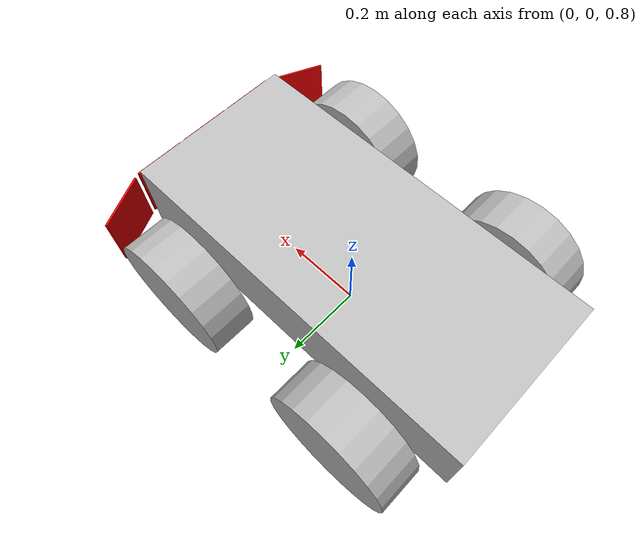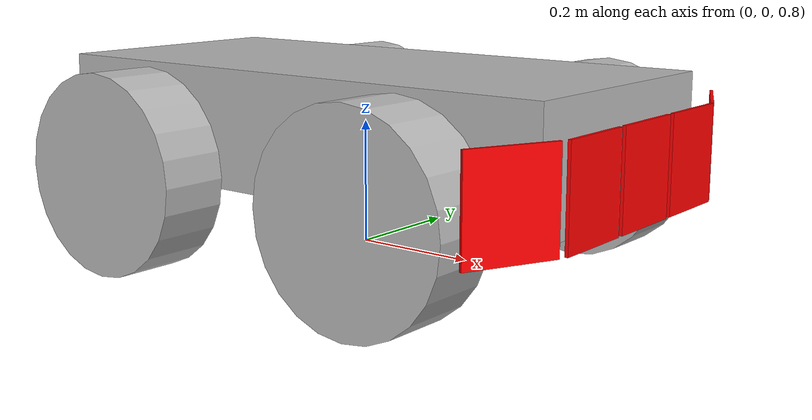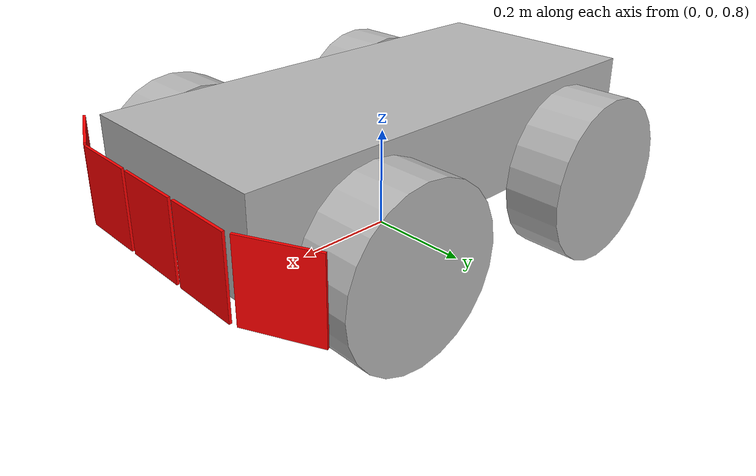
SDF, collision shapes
<?xml version="1.0" ?>
<sdf version="1.10">

<model name='scout' canonical_link='chassis'>

  <!-- base_link -->

  <link name='chassis'>
    <pose relative_to='__model__'>0 0 1 0 0 0</pose>
    <inertial auto="true">
      <mass>50</mass>
    </inertial>
    <visual name='visual'>
      <geometry>
        <mesh><uri>meshes/scout_base.dae</uri></mesh>
      </geometry>
    </visual>
    <collision name='collision'>
      <geometry>
        <box>
          <size>0.93 0.42 0.19</size>
        </box>
      </geometry>
    </collision>
    <sensor name="imu_sensor" type="imu">
      <always_on>true</always_on>
      <update_rate>1</update_rate>
      <visualize>true</visualize>
      <topic>scout/imu</topic>
    </sensor>
  </link>

  <!-- sensor bar -->

  <link name='force_bar_P0_link'>
    <pose relative_to="chassis">0.466 0.28 -0.025 1.57079 0 0.43633</pose>
    <inertial auto="true">
      <mass>1</mass>
    </inertial>
    <visual name='visual'>
      <geometry>
        <box>
          <size>0.005 0.15 0.14</size>
        </box>
      </geometry>
      <material>
        <ambient>1.0 0.0 0.0 1</ambient>
        <diffuse>1.0 0.0 0.0 1</diffuse>
        <specular>1.0 0.0 0.0 1</specular>
      </material>
    </visual>
    <collision name='collision'>
      <geometry>
        <box>
          <size>0.005 0.15 0.14</size>
        </box>
      </geometry>
    </collision>
  </link>
  <joint name='force_bar_P0_joint' type='fixed'>
    <pose relative_to='force_bar_P0_link'/>
    <parent>chassis</parent>
    <child>force_bar_P0_link</child>
    <sensor name='force_bar_P0_sensor' type='force_torque'>
      <always_on>true</always_on>
      <update_rate>1</update_rate>
      <visualize>true</visualize>
      <topic>scout/force_bar_P0</topic>
    </sensor>
  </joint>

  <link name='force_bar_P1_link'>
    <pose relative_to="chassis">0.5 0.14 -0.025 1.57079 0 0</pose>
    <inertial auto="true">
      <mass>1</mass>
    </inertial>
    <visual name='visual'>
      <geometry>
        <box>
          <size>0.005 0.15 0.13</size>
        </box>
      </geometry>
      <material>
        <ambient>1.0 0.0 0.0 1</ambient>
        <diffuse>1.0 0.0 0.0 1</diffuse>
        <specular>1.0 0.0 0.0 1</specular>
      </material>
    </visual>
    <collision name='collision'>
      <geometry>
        <box>
          <size>0.005 0.15 0.13</size>
        </box>
      </geometry>
    </collision>
  </link>
  <joint name='force_bar_P1_joint' type='fixed'>
    <pose relative_to='force_bar_P1_link'/>
    <parent>chassis</parent>
    <child>force_bar_P1_link</child>
    <sensor name='force_bar_P1_sensor' type='force_torque'>
      <always_on>true</always_on>
      <update_rate>1</update_rate>
      <visualize>true</visualize>
      <topic>scout/force_bar_P1</topic>
    </sensor>
  </joint>

  <link name='force_bar_P2_link'>
    <pose relative_to="chassis">0.5 0 -0.025 1.57079 0 0</pose>
    <inertial auto="true">
      <mass>1</mass>
    </inertial>
    <visual name='visual'>
      <geometry>
        <box>
          <size>0.005 0.15 0.13</size>
        </box>
      </geometry>
      <material>
        <ambient>1.0 0.0 0.0 1</ambient>
        <diffuse>1.0 0.0 0.0 1</diffuse>
        <specular>1.0 0.0 0.0 1</specular>
      </material>
    </visual>
    <collision name='collision'>
      <geometry>
        <box>
          <size>0.005 0.15 0.13</size>
        </box>
      </geometry>
    </collision>
  </link>
  <joint name='force_bar_P2_joint' type='fixed'>
    <pose relative_to='force_bar_P2_link'/>
    <parent>chassis</parent>
    <child>force_bar_P2_link</child>
    <sensor name='force_bar_P2_sensor' type='force_torque'>
      <always_on>true</always_on>
      <update_rate>1</update_rate>
      <visualize>true</visualize>
      <topic>scout/force_bar_P2</topic>
    </sensor>
  </joint>

  <link name='force_bar_P3_link'>
    <pose relative_to="chassis">0.5 -0.14 -0.025 1.57079 0 0</pose>
    <inertial auto="true">
      <mass>1</mass>
    </inertial>
    <visual name='visual'>
      <geometry>
        <box>
          <size>0.005 0.15 0.13</size>
        </box>
      </geometry>
      <material>
        <ambient>1.0 0.0 0.0 1</ambient>
        <diffuse>1.0 0.0 0.0 1</diffuse>
        <specular>1.0 0.0 0.0 1</specular>
      </material>
    </visual>
    <collision name='collision'>
      <geometry>
        <box>
          <size>0.005 0.15 0.13</size>
        </box>
      </geometry>
    </collision>
  </link>
  <joint name='force_bar_P3_joint' type='fixed'>
    <pose relative_to='force_bar_P3_link'/>
    <parent>chassis</parent>
    <child>force_bar_P3_link</child>
    <sensor name='force_bar_P3_sensor' type='force_torque'>
      <always_on>true</always_on>
      <update_rate>1</update_rate>
      <visualize>true</visualize>
      <topic>scout/force_bar_P3</topic>
    </sensor>
  </joint>

  <link name='force_bar_P4_link'>
    <pose relative_to="chassis">0.466 -0.28 -0.025 1.57079 0 -0.43633</pose>
    <inertial auto="true">
      <mass>1</mass>
    </inertial>
    <visual name='visual'>
      <geometry>
        <box>
          <size>0.005 0.15 0.14</size>
        </box>
      </geometry>
      <material>
        <ambient>1.0 0.0 0.0 1</ambient>
        <diffuse>1.0 0.0 0.0 1</diffuse>
        <specular>1.0 0.0 0.0 1</specular>
      </material>
    </visual>
    <collision name='collision'>
      <geometry>
        <box>
          <size>0.005 0.15 0.14</size>
        </box>
      </geometry>
    </collision>
  </link>
  <joint name='force_bar_P4_joint' type='fixed'>
    <pose relative_to='force_bar_P4_link'/>
    <parent>chassis</parent>
    <child>force_bar_P4_link</child>
    <sensor name='force_bar_P4_sensor' type='force_torque'>
      <always_on>true</always_on>
      <update_rate>1</update_rate>
      <visualize>true</visualize>
      <topic>scout/force_bar_P4</topic>
    </sensor>
  </joint>

  <!-- wheels -->

  <link name='front_left_wheel'>
    <pose relative_to="chassis">0.249 0.29153 -0.0702 0 0 0</pose>
    <inertial auto="true">
      <mass>8</mass>
    </inertial>
    <visual name='visual'>
      <geometry>
        <mesh><uri>meshes/wheel_type2.dae</uri></mesh>
      </geometry>
    </visual>
    <collision name='collision'>
      <pose relative_to="chassis">0.249 0.29153 -0.0702 1.57079 0 0</pose>
      <geometry>
        <cylinder>
          <radius>0.16</radius>
          <length>0.11</length>
        </cylinder>
      </geometry>
    </collision>
  </link>
  <joint name='front_left_wheel_joint' type='revolute'>
    <pose relative_to='front_left_wheel'/>
    <parent>chassis</parent>
    <child>front_left_wheel</child>
    <axis>
        <xyz expressed_in='__model__'>0 1 0</xyz>
        <limit>
          <lower>-inf</lower>
          <upper>inf</upper>
        </limit>
    </axis>
  </joint>

  <link name='front_right_wheel'>
    <pose relative_to="chassis">0.249 -0.29153 -0.0702 3.14159 0 0</pose>
    <inertial auto="true">
      <mass>8</mass>
    </inertial>
    <visual name='visual'>
      <geometry>
        <mesh><uri>meshes/wheel_type1.dae</uri></mesh>
      </geometry>
    </visual>
    <collision name='collision'>
      <pose relative_to="chassis">0.249 -0.29153 -0.0702 -1.57079 0 0</pose>
      <geometry>
        <cylinder>
          <radius>0.16</radius>
          <length>0.11</length>
        </cylinder>
      </geometry>
    </collision>
  </link>
  <joint name='front_right_wheel_joint' type='revolute'>
    <pose relative_to='front_right_wheel'/>
    <parent>chassis</parent>
    <child>front_right_wheel</child>
    <axis>
      <xyz expressed_in='__model__'>0 1 0</xyz>
      <limit>
        <lower>-inf</lower>
        <upper>inf</upper>
      </limit>
    </axis>
  </joint>

  <link name='back_left_wheel'>
    <pose relative_to="chassis">-0.249 0.29153 -0.0702 0 0 0</pose>
    <inertial auto="true">
      <mass>8</mass>
    </inertial>
    <visual name='visual'>
      <geometry>
        <mesh><uri>meshes/wheel_type1.dae</uri></mesh>
      </geometry>
    </visual>
    <collision name='collision'>
      <pose relative_to="chassis">-0.249 0.29153 -0.0702 1.57079 0 0</pose>
      <geometry>
        <cylinder>
          <radius>0.16</radius>
          <length>0.11</length>
        </cylinder>
      </geometry>
    </collision>
  </link>
  <joint name='back_left_wheel_joint' type='revolute'>
    <pose relative_to='back_left_wheel'/>
    <parent>chassis</parent>
    <child>back_left_wheel</child>
    <axis>
        <xyz expressed_in='__model__'>0 1 0</xyz>
        <limit>
          <lower>-inf</lower>
          <upper>inf</upper>
        </limit>
    </axis>
  </joint>

  <link name='back_right_wheel'>
    <pose relative_to="chassis">-0.249 -0.29153 -0.0702 3.14159 0 0</pose>
    <inertial auto="true">
      <mass>8</mass>
    </inertial>
    <visual name='visual'>
      <geometry>
        <mesh><uri>meshes/wheel_type2.dae</uri></mesh>
      </geometry>
    </visual>
    <collision name='collision'>
      <pose relative_to="chassis">-0.249 -0.29153 -0.0702 -1.57079 0 0</pose>
      <geometry>
        <cylinder>
          <radius>0.16</radius>
          <length>0.11</length>
        </cylinder>
      </geometry>
    </collision>
  </link>
  <joint name='back_right_wheel_joint' type='revolute'>
    <pose relative_to='back_right_wheel'/>
    <parent>chassis</parent>
    <child>back_right_wheel</child>
    <axis>
      <xyz expressed_in='__model__'>0 1 0</xyz>
      <limit>
        <lower>-inf</lower>
        <upper>inf</upper>
      </limit>
    </axis>
  </joint>

  <!-- driving system -->

  <plugin
    filename="gz-sim-mecanum-drive-system"
    name="gz::sim::systems::MecanumDrive">
    <front_left_joint>front_left_wheel_joint</front_left_joint>
    <front_right_joint>front_right_wheel_joint</front_right_joint>
    <back_left_joint>back_left_wheel_joint</back_left_joint>
    <back_right_joint>back_right_wheel_joint</back_right_joint>
    <!-- TODO: accurate values -->
    <wheel_separation>1.2</wheel_separation>
    <wheel_radius>0.4</wheel_radius>
    <odom_publish_frequency>1</odom_publish_frequency>
    <topic>cmd_vel</topic>
  </plugin>

  <plugin
    filename="gz-sim-triggered-publisher-system"
    name="gz::sim::systems::TriggeredPublisher">
    <input type="gz.msgs.Int32" topic="/keyboard/keypress">
      <match field="data">16777235</match> <!-- FrontArrowKey: drive frontward -->
    </input>
    <output type="gz.msgs.Twist" topic="/cmd_vel">
      linear: {x: 3.0}, angular: {z: 0.0}
    </output>
  </plugin>

  <plugin
    filename="gz-sim-triggered-publisher-system"
    name="gz::sim::systems::TriggeredPublisher">
    <input type="gz.msgs.Int32" topic="/keyboard/keypress">
      <match field="data">16777237</match>
      <!-- BackArrowKey: drive backward -->
    </input>
    <output type="gz.msgs.Twist" topic="/cmd_vel">
      linear: {x: -3.0}, angular: {z: 0.0}
    </output>
  </plugin>

  <plugin
    filename="gz-sim-triggered-publisher-system"
    name="gz::sim::systems::TriggeredPublisher">
    <input type="gz.msgs.Int32" topic="/keyboard/keypress">
      <match field="data">16777234</match>
      <!-- LeftArrowKey: turn left -->
    </input>
    <output type="gz.msgs.Twist" topic="/cmd_vel">
      linear: {x: 0.0}, angular: {z: 1.0}
    </output>
  </plugin>

  <plugin
    filename="gz-sim-triggered-publisher-system"
    name="gz::sim::systems::TriggeredPublisher">
    <input type="gz.msgs.Int32" topic="/keyboard/keypress">
      <match field="data">16777236</match>
      <!-- RightArrowKey: turn right -->
    </input>
    <output type="gz.msgs.Twist" topic="/cmd_vel">
      linear: {x: 0.0}, angular: {z: -1.0}
    </output>
  </plugin>

  <plugin
    filename="gz-sim-triggered-publisher-system"
    name="gz::sim::systems::TriggeredPublisher">
    <input type="gz.msgs.Int32" topic="/keyboard/keypress">
      <match field="data">83</match>
      <!-- s: stop -->
    </input>
    <output type="gz.msgs.Twist" topic="/cmd_vel">
      linear: {x: 0.0}, angular: {z: 0.0}
    </output>
  </plugin>

</model>

</sdf>
